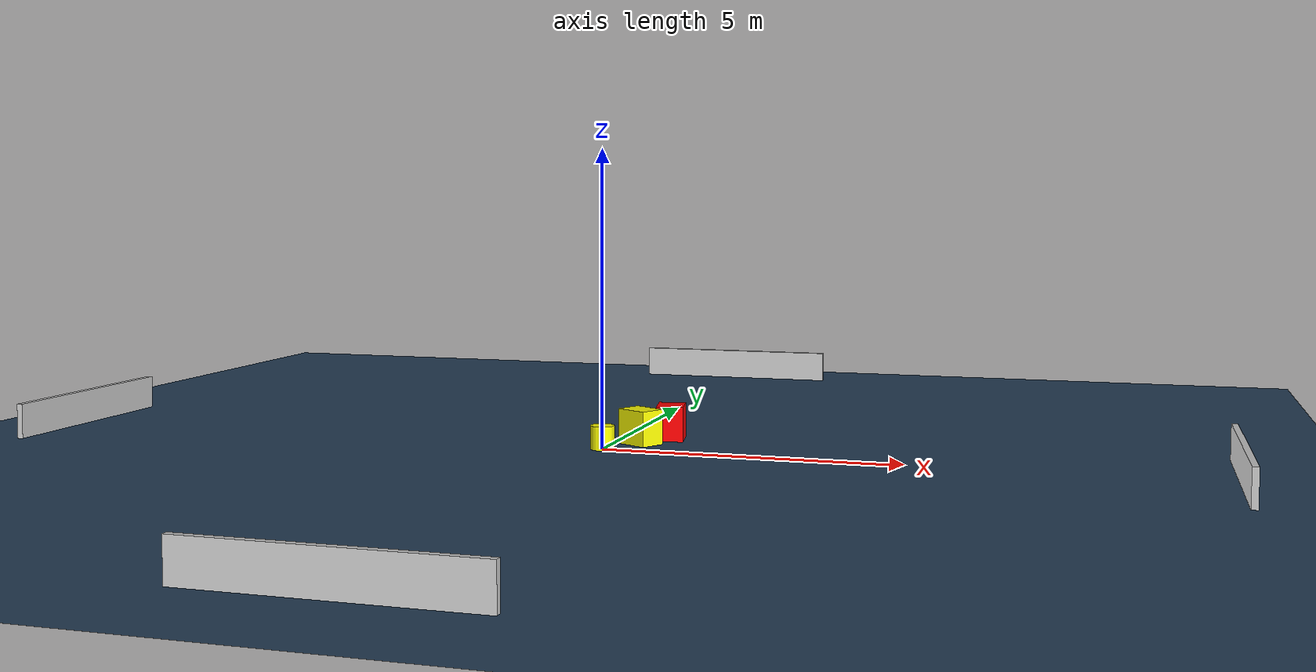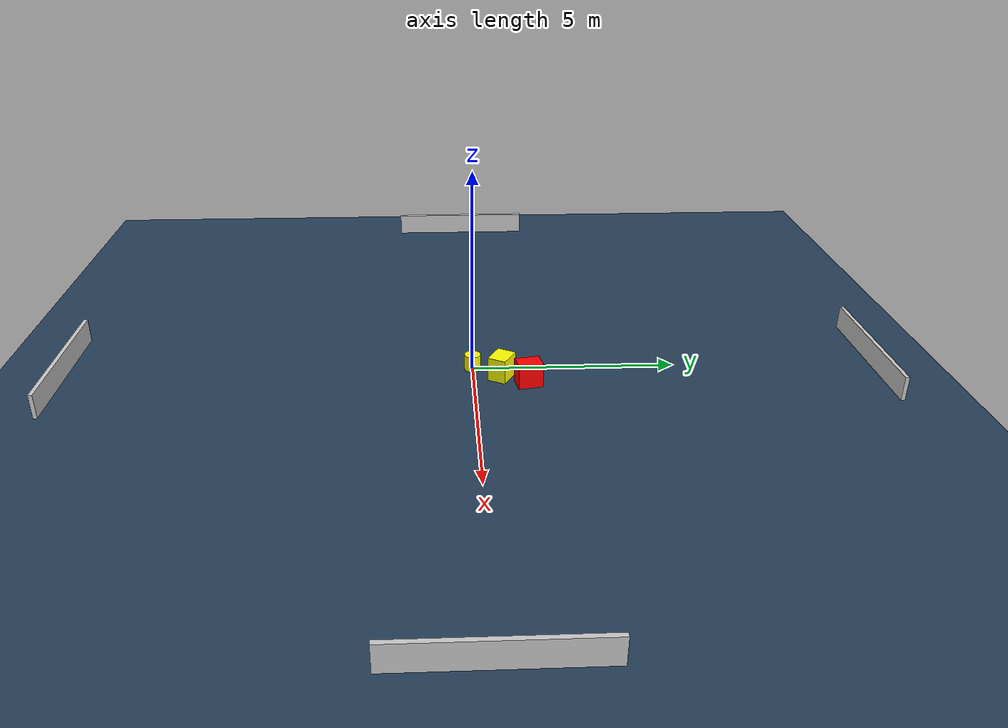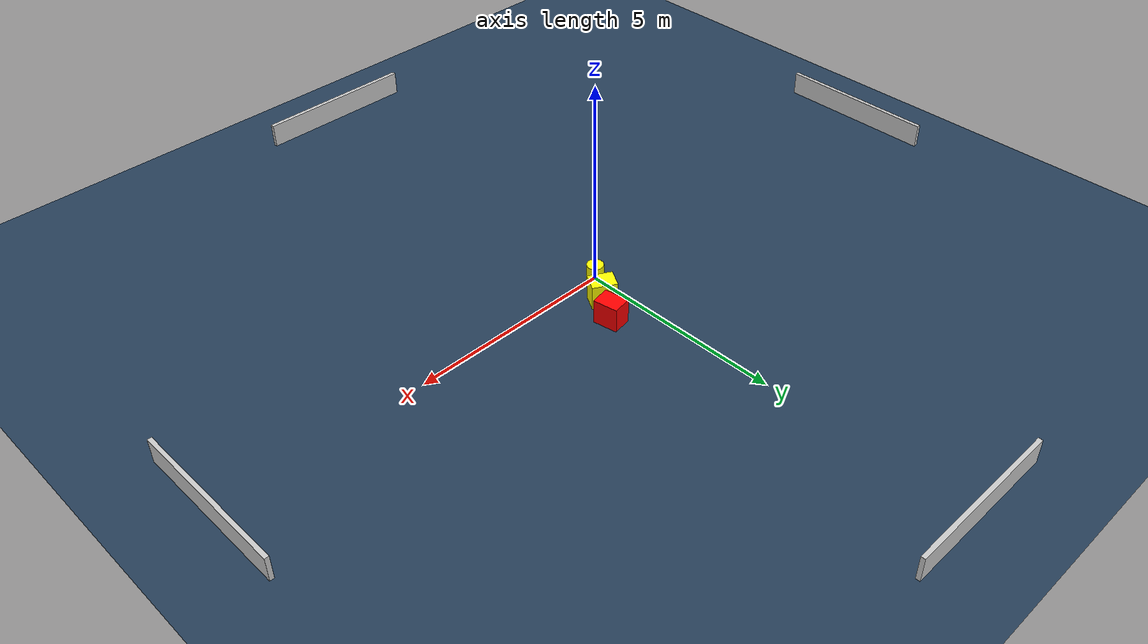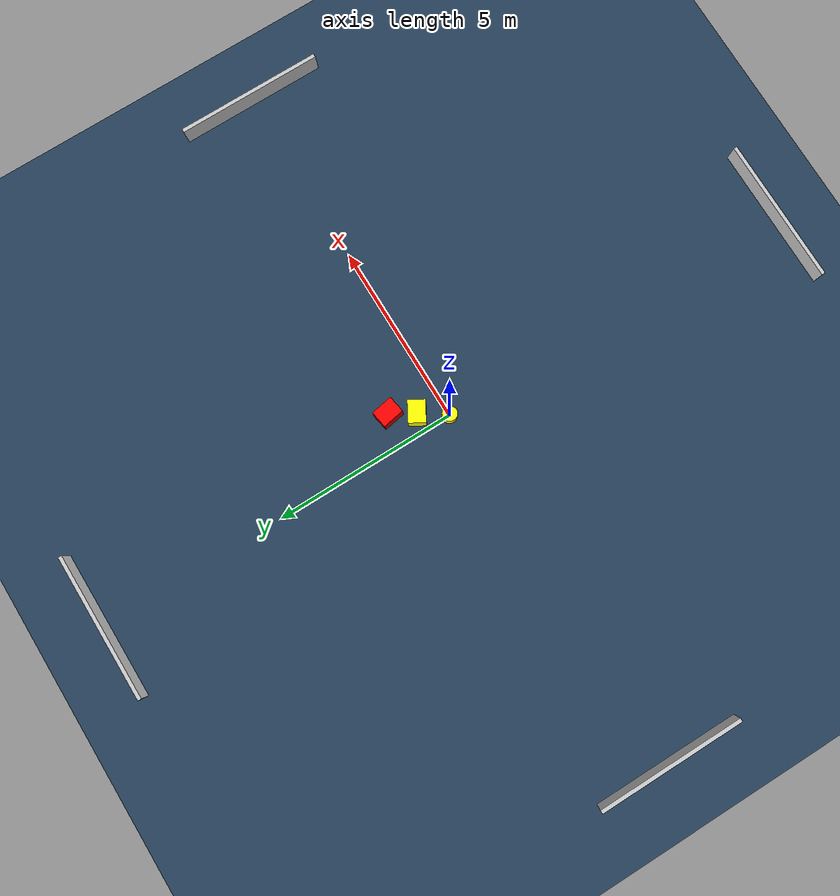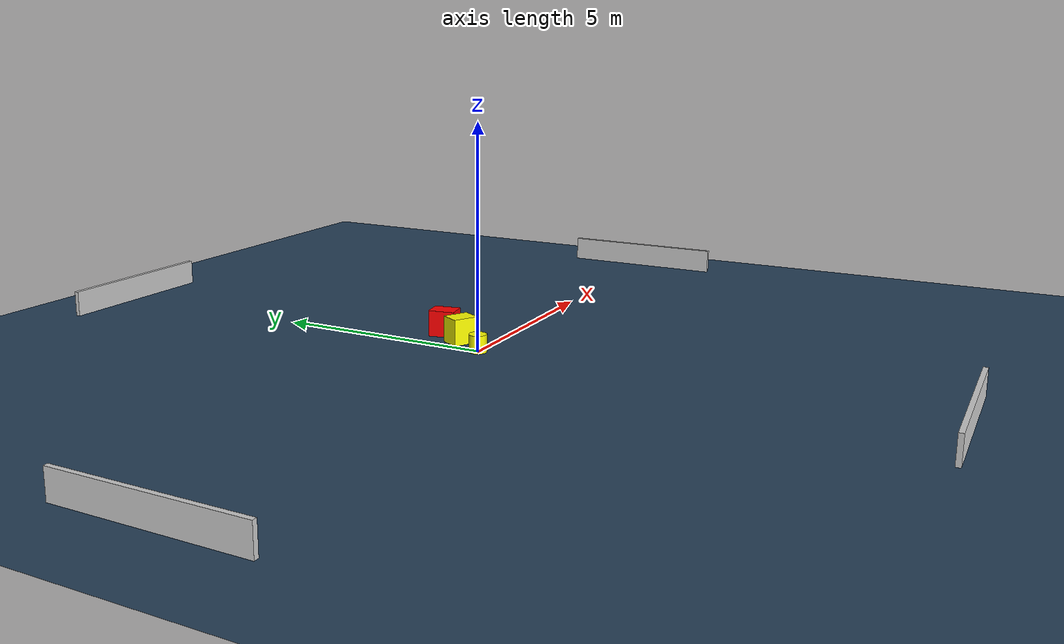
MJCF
<?xml version="1.0" ?>
<mujoco model="generated_environment">
  <option timestep="0.01" integrator="RK4" cone="elliptic"/>
  <default>
    <geom density="1"/>
  </default>
  <asset>
    <texture builtin="gradient" height="3072" name="skybox" rgb1="0.3 0.5 0.7" rgb2="0 0 0" type="skybox" width="512"/>
    <texture builtin="checker" height="300" name="groundplane" rgb1="0.2 0.3 0.4" rgb2="0.1 0.2 0.3" type="2d" width="300"/>
    <material name="groundplane" reflectance="0.2" texrepeat="5 5" texture="groundplane"/>
  </asset>
  <worldbody>
    <light dir="0 0 -1" directional="true" pos="0 0 1.5"/>
    <geom condim="3" friction="0.5 0.005 0.001" material="groundplane" name="floor" pos="0 0 0" size="0 0 0.05" type="plane"/>
    <body name="walls">
      <geom name="wall_1" condim="4" pos="-10.0 0.0 0.3" rgba="0.800000011920929 0.800000011920929 0.800000011920929 1.0" size="0.05 2.0 0.3" type="box"/>
      <geom name="wall_2" condim="4" pos="10.0 0.0 0.3" rgba="0.800000011920929 0.800000011920929 0.800000011920929 1.0" size="0.05 2.0 0.3" type="box"/>
      <geom name="wall_3" condim="4" pos="0.0 -10.0 0.3" rgba="0.800000011920929 0.800000011920929 0.800000011920929 1.0" size="2.0 0.05 0.3" type="box"/>
      <geom name="wall_4" condim="4" pos="0.0 10.0 0.3" rgba="0.800000011920929 0.800000011920929 0.800000011920929 1.0" size="2.0 0.05 0.3" type="box"/>
    </body>
    <body name="robot">
      <joint name="joint_x" type="slide" pos="0 0 0" axis="1 0 0"/>
      <joint name="joint_y" type="slide" pos="0 0 0" axis="0 1 0"/>
      <geom name="robot" type="cylinder" pos="0.0 0.0 0.2" size="0.2 0.2 0.0" mass="5.0" friction="1.0 0.005 0.0001" condim="4" rgba="1.0 1.0 0.0 1.0"/>
    </body>
    <body name="obstacle_1_movable">
      <geom name="obstacle_1_movable" condim="4" pos="0.4646109822813468 0.687875382141892 0.3" euler="0 0 240.7069608994885" friction="0.0 0.005 0.001" rgba="1.0 1.0 0.0 1.0" size="0.22964847699834043 0.29608146461145646 0.3" type="box" mass="0.1"/>
      <joint type="free"/>
    </body>
    <body name="obstacle_2_static">
      <geom name="obstacle_2_static" condim="4" pos="0.831688166367304 1.318832699088505 0.3" euler="0 0 279.87714222055956" friction="0.0 0.005 0.001" rgba="1.0 0.0 0.0 1.0" size="0.30117887766512536 0.2326864644552409 0.3" type="box"/>
    </body>
  </worldbody>
  <actuator>
    <motor name="actuator_x" joint="joint_x" gear="1" ctrlrange="-1 1"/>
    <motor name="actuator_y" joint="joint_y" gear="1" ctrlrange="-1 1"/>
  </actuator>
</mujoco>
